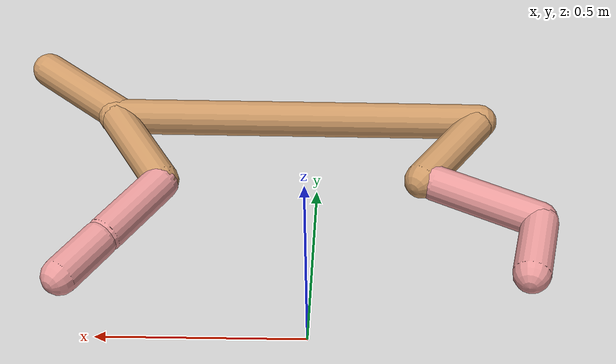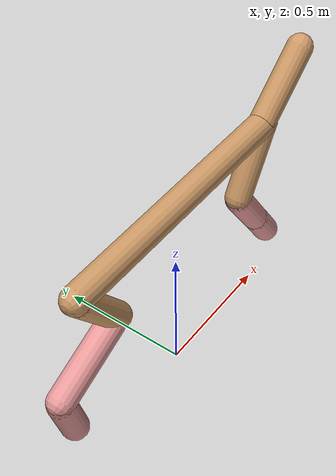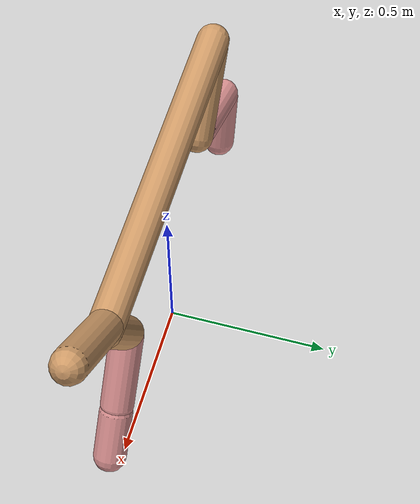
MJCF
<mujoco model="cheetah">
  <compiler angle="radian" coordinate="local" inertiafromgeom="true" settotalmass="14" />
  <default>
    <joint armature=".1" damping=".01" limited="true" solimplimit="0 .8 .03" solreflimit=".02 1" stiffness="8" />
    <geom conaffinity="0" condim="3" contype="1" friction="0.8 .1 .1" rgba="0.8 0.6 .4 1" solimp="0.0 0.8 0.01" solref="0.02 1" />
    <motor ctrllimited="true" ctrlrange="-1 1" />
  </default>
  <size nstack="300000" nuser_geom="1" />
  <option gravity="0 0 -9.81" timestep="0.01" />
  <worldbody>
    <body name="torso" pos="0.0 0.0 0.7645654851675407">
      <joint armature="0" axis="1 0 0" damping="0" limited="false" name="ignorex" pos="0 0 0" stiffness="0" type="slide" />
      <joint armature="0" axis="0 0 1" damping="0" limited="false" name="ignorez" pos="0 0 0" stiffness="0" type="slide" />
      <joint armature="0" axis="0 1 0" damping="0" limited="false" name="ignorey" pos="0 0 0" stiffness="0" type="hinge" />
      <geom fromto="-0.5 0.0 0.0 0.5265379115481718 0.0 0.0" name="torso" size="0.04935219201295627" type="capsule" />
      <geom axisangle="0 1 0 .87" name="head" pos="0.6265379115481718 0.0 0.1" size="0.048700788676646435 0.15" type="capsule" />

      <body name="bthigh" pos="-.5 0 0">
        <joint axis="0 1 0" damping="6" name="bthigh" pos="0 0 0" range="-.52 1.05" stiffness="240" type="hinge" />
        <geom axisangle="0 1 0 -3.8" name="bthigh" pos="0.09665780926678709 0.0 -0.1256551520468232" size="0.048661067639119926 0.139518399628448" type="capsule" />
        <body name="bshin" pos="0.15331561853357417 0.0 -0.24131030409364643">
          <joint axis="0 1 0" damping="4.5" name="bshin" pos="0 0 0" range="-.785 .785" stiffness="180" type="hinge" />
          <geom axisangle="0 1 0 -2.03" name="bshin" pos="-0.13492804232154001 0.0 -0.06746402116077001" rgba="0.9 0.6 0.6 1" size="0.048661067639119926 0.14432937892598072" type="capsule" />
          <body name="bfoot" pos="-0.26985608464308003 0.0 -0.13492804232154001">
            <joint axis="0 1 0" damping="3" name="bfoot" pos="0 0 0" range="-.4 .785" stiffness="120" type="hinge" />
            <geom axisangle="0 1 0 -.27" name="bfoot" pos="0.02895002198181045 0.0 -0.09360507107452046" rgba="0.9 0.6 0.6 1" size="0.048661067639119926 0.09044641079361458" type="capsule" />
            <inertial mass="10" />
          </body>
        </body>
      </body>
      <body name="fthigh" pos="0.5265379115481719 0.0 0.0">
        <joint axis="0 1 0" damping="4.5" name="fthigh" pos="0 0 0" range="-1.5 0.8" stiffness="180" type="hinge" />
        <geom axisangle="0 1 0 .52" name="fthigh" pos="-0.07452598961391449 0.0 -0.1277588393381391" size="0.04853575179048583 0.1419824367440198" type="capsule" />
        <body name="fshin" pos="-0.14905197922782898 0.0 -0.2555176786762782">
          <joint axis="0 1 0" damping="3" name="fshin" pos="0 0 0" range="-1.2 1.1" stiffness="120" type="hinge" />
          <geom axisangle="0 1 0 -.6" name="fshin" pos="0.06919148855336522 0.0 -0.09580359953542877" rgba="0.9 0.6 0.6 1" size="0.04853575179048583 0.1131589345478654" type="capsule" />
          <body name="ffoot" pos="0.13838297710673045 0.0 -0.19160719907085755">
            <joint axis="0 1 0" damping="1.5" name="ffoot" pos="0 0 0" range="-3.1 -0.3" stiffness="60" type="hinge" />
            <geom axisangle="0 1 0 -.6" name="ffoot" pos="0.04755648466201158 0.0 -0.07397675391868469" rgba="0.9 0.6 0.6 1" size="0.04853575179048583 0.07472759828632622" type="capsule" />
            <inertial mass="10" />
          </body>
        </body>
      </body>
    </body>
  </worldbody>
  <actuator>
    <motor gear="120" joint="bthigh" name="bthigh" />
    <motor gear="90" joint="bshin" name="bshin" />
    <motor gear="60" joint="bfoot" name="bfoot" />
    <motor gear="120" joint="fthigh" name="fthigh" />
    <motor gear="60" joint="fshin" name="fshin" />
    <motor gear="30" joint="ffoot" name="ffoot" />
  </actuator>
</mujoco>
